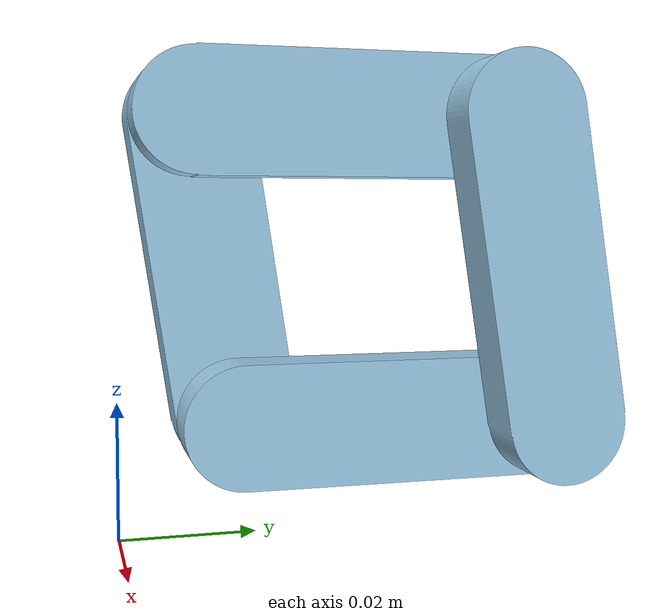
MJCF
<mujoco model="robot">
	<compiler angle="radian" autolimits="true" eulerseq="XYZ"/>
	<option integrator="implicitfast"/>
	<asset>

		<mesh file="link.stl"/>

		<material name="cornflower" rgba="0.615686274509804 0.8117647058823529 0.9294117647058824 1"/>
	</asset>
	<default>

		<joint axis="0 0 1" type="hinge"/>

		<geom/>

		<default class="joint_1">

			<joint range="-3.14 3.14"/>

		</default>
	</default>
	<worldbody>
		<body name="base" pos="0 0 0" euler="0 0 0">
			<inertial pos="-0.014027284654159314 0.04545103308103392 0.013612788327745002" mass="0.10278949469592548" fullinertia="4.046269979572888e-05 4.071463544027533e-06 3.810439449663344e-05 0.0 0.0 0.0"/>
			<geom type="mesh" pos="-0.019027284654159315 0.020564376492647946 0.013612788327745002" euler="0.0 -0.0 0.0" mesh="link" material="cornflower"/>
			<body name="link" pos="-0.019027284654159315 0.020564376492647963 0.01361278832774504" euler="1.5707963267948966 1.4215831106034549 1.5707963267948966">
				<joint name="Revolute 11" range="-6.283185307179586 6.283185307179586"/>
				<inertial pos="-0.02511334341161403 -4.853152111785978e-18 -0.0049999999999999975" mass="0.10278949469592548" fullinertia="4.071463544027533e-06 3.810439449663345e-05 4.046269979572888e-05 1.0576094027390638e-21 2.214856214304335e-52 1.668613421629983e-51"/>
				<geom type="mesh" pos="-0.05 -5.204170427930421e-18 -0.009999999999999998" euler="-1.5707963267948966 -1.5707963267948966 0.0" mesh="link" material="cornflower"/>
				<body name="link_2" pos="-0.0500000000000002 9.020562075079397e-17 0.0" euler="3.141592653589793 -5.4990036047523246e-27 -1.7200095429863738">
					<joint class="joint_1" name="Revolute 21"/>
					<inertial pos="-0.02511334341161403 1.3526769491670014e-17 -0.005000000000000001" mass="0.10278949469592548" fullinertia="4.071463544027533e-06 3.810439449663344e-05 4.046269979572888e-05 0.0 0.0 1.0548467844780288e-47"/>
					<geom type="mesh" pos="-0.05 1.3877787807814457e-17 0.0" euler="1.5707963267948966 1.5707963267948966 0.0" mesh="link" material="cornflower"/>
					<body name="link_3" pos="-0.04999999999999996 2.7755575615628914e-17 -0.01" euler="4.920734365087288e-27 4.257832819017895e-27 -1.7200095429863782">
						<joint class="joint_1" name="Revolute 31"/>
						<inertial pos="0.024886656588385972 2.0744486385915e-18 -0.005000000000000001" mass="0.10278949469592548" fullinertia="4.071463544027534e-06 3.810439449663345e-05 4.046269979572888e-05 -9.446035884765312e-22 -1.7286910878817924e-51 1.668613421629983e-51"/>
						<geom type="mesh" pos="-6.938893903907228e-18 1.734723475976807e-18 0.0" euler="1.5707963267948966 1.5707963267948966 0.0" mesh="link" material="cornflower"/>
					</body>
				</body>
			</body>
		</body>
	</worldbody>
	<equality>
		<connect anchor="-0.009027284654159315 0.07056437649264814 0.013612788327745054" body1="base" body2="link_3"/>
	</equality>
</mujoco>
